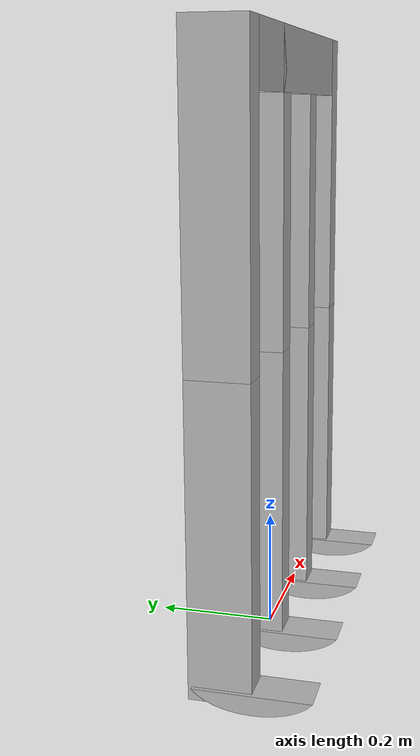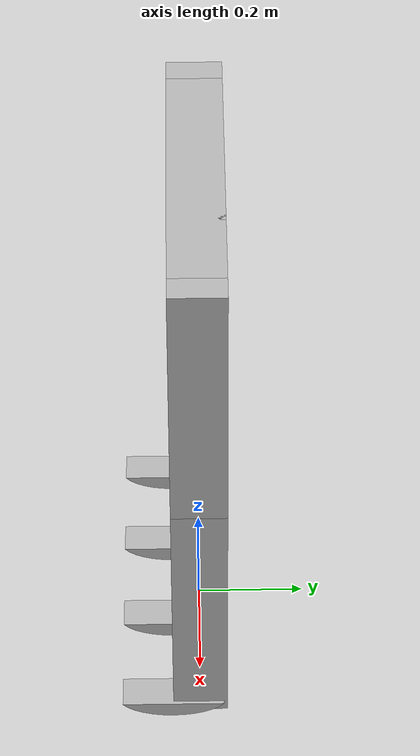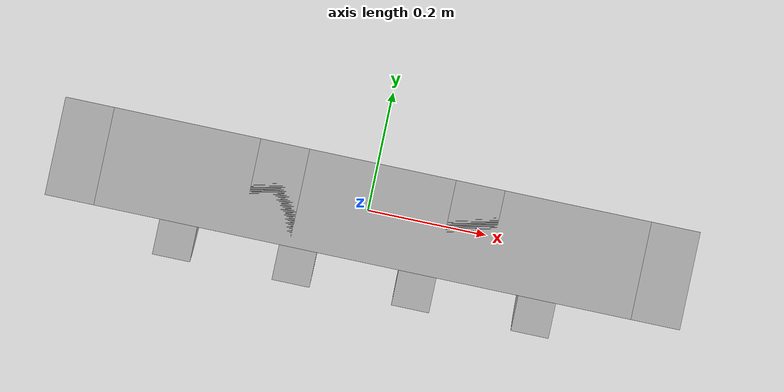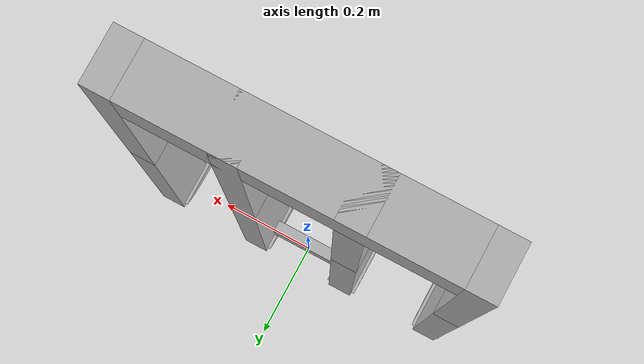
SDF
<?xml version="1.0" ?>
<sdf version="1.5">

  <model name="passive_dynamic_walker">
    <pose>0 0 0.025 0 0 0</pose>

    <link name="codpiece">
      <self_collide>0</self_collide>
      <pose>-0.0 0.0 .9  -0.000000 0.000000 0</pose>
      <inertial>
        <pose>0 0 0.0 0.000000 -0.000000 0.000000</pose>
        <inertia>
          <ixx>.00007333</ixx>
          <ixy>0</ixy>
          <ixz>0</ixz>
          <iyy>0.00089848</iyy>
          <iyz>0</iyz>
          <izz>0.00089848</izz>
        </inertia>
        <mass>.044</mass>
      </inertial>
      <collision name="codpiece-geom">
        <pose>0 -0.00000 0.0500000 0.000000 0 -0.000000</pose>
        <geometry>
          <box>
            <size>.55 .1 .1</size>
          </box>
        </geometry>
        <surface>
          <friction>
            <ode>
              <mu>10.00000</mu>
              <mu2>10.0000</mu2>
              <fdir1>0.000000 0.000000 0.000000</fdir1>
              <slip1>0.000000</slip1>
              <slip2>0.000000</slip2>
            </ode>
          </friction>
          <bounce>
            <restitution_coefficient>0.7000000</restitution_coefficient>
            <threshold>100000.000000</threshold>
          </bounce>
          <contact>
            <ode>
              <soft_cfm>0.000000</soft_cfm>
              <soft_erp>0.000000</soft_erp>
              <kp>1000000000000.000000</kp>
              <kd>1.000000</kd>
              <max_vel>0.000000</max_vel>
              <min_depth>0.001000</min_depth>
            </ode>
          </contact>
        </surface>
        <laser_retro>0.000000</laser_retro>
      </collision>
      <visual name="codpiece-viz">
        <pose>0 -0.00000 0.0500000 0.000000 0 -0.000000</pose>
        <geometry>
          <box>
            <size>.55 .1 .1</size>
          </box>
        </geometry>
        <cast_shadows>1</cast_shadows>
        <laser_retro>0.000000</laser_retro>
        <transparency>0.000000</transparency>
      </visual>
    </link>

    <link name="back-upper-legs">
      <self_collide>0</self_collide>
      <pose>-0.0 0.0 .75 -0.000000 0.000000 0</pose>
      <inertial> <!-- box dim: w=1, h=.025, d=1 -->
        <pose>0 0 0.125 0.000000 -0.000000 0.000000</pose>
        <inertia>
          <ixx>.0008666</ixx>
          <ixy>0</ixy>
          <ixz>0</ixz>
          <iyy>0.00124166</iyy>
          <iyz>0</iyz>
          <izz>0.000221666</izz>
        </inertia>
        <mass>0.04</mass>
      </inertial>
      <collision name="back-left-upper-leg-geom">
        <pose>-.3 -0.00000 0.000 0.000000 0 -0.000000</pose>
        <geometry>
          <box>
            <size>.05 .1 .5</size>
          </box>
        </geometry>
        <surface>
          <friction>
            <ode>
              <mu>10.00000</mu>
              <mu2>10.0000</mu2>
              <fdir1>0.000000 0.000000 0.000000</fdir1>
              <slip1>0.000000</slip1>
              <slip2>0.000000</slip2>
            </ode>
          </friction>
          <bounce>
            <restitution_coefficient>0.7000000</restitution_coefficient>
            <threshold>100000.000000</threshold>
          </bounce>
          <contact>
            <ode>
              <soft_cfm>0.000000</soft_cfm>
              <soft_erp>0.000000</soft_erp>
              <kp>1000000000000.000000</kp>
              <kd>1.000000</kd>
              <max_vel>0.000000</max_vel>
              <min_depth>0.001000</min_depth>
            </ode>
          </contact>
        </surface>
        <laser_retro>0.000000</laser_retro>
      </collision>
      <collision name="back-right-upper-leg-geom">
        <pose>.3 -0.00000 0.0000 0.000000 0 -0.000000</pose>
        <geometry>
          <box>
            <size>.05 .1 .5</size>
          </box>
        </geometry>
        <surface>
          <friction>
            <ode>
              <mu>10.00000</mu>
              <mu2>10.0000</mu2>
              <fdir1>0.000000 0.000000 0.000000</fdir1>
              <slip1>0.000000</slip1>
              <slip2>0.000000</slip2>
            </ode>
          </friction>
          <bounce>
            <restitution_coefficient>0.7000000</restitution_coefficient>
            <threshold>100000.000000</threshold>
          </bounce>
          <contact>
            <ode>
              <soft_cfm>0.000000</soft_cfm>
              <soft_erp>0.000000</soft_erp>
              <kp>1000000000000.000000</kp>
              <kd>1.000000</kd>
              <max_vel>0.000000</max_vel>
              <min_depth>0.001000</min_depth>
            </ode>
          </contact>
        </surface>
        <laser_retro>0.000000</laser_retro>
      </collision>
      <visual name="back-left-upper-leg-viz">
        <pose>-.3 -0.00000 0.000000 0.000000 0 -0.000000</pose>
        <geometry>
          <box>
            <size>.05 .1 .5</size>
          </box>
        </geometry>
        <cast_shadows>1</cast_shadows>
        <laser_retro>0.000000</laser_retro>
        <transparency>0.000000</transparency>
      </visual>
      <visual name="back-right-upper-leg-viz">
        <pose>.3 -0.00000 0.000000 0.000000 0 -0.000000</pose>
        <geometry>
          <box>
            <size>.05 .1 .5</size>
          </box>
        </geometry>
        <cast_shadows>1</cast_shadows>
        <laser_retro>0.000000</laser_retro>
        <transparency>0.000000</transparency>
      </visual>
    </link>

    <link name="back-left-lower-leg">
      <self_collide>0</self_collide>
      <pose>-0.3 0.0 .25 -0.000000 0.000000 0</pose>
      <inertial> <!-- box dim: w=1, h=.025, d=1 -->
        <pose>0 0 -0.0625 0.000000 -0.000000 0.000000</pose>
        <inertia>
          <ixx>.00004333</ixx>
          <ixy>0</ixy>
          <ixz>0</ixz>
          <iyy>0.000042083</iyy>
          <iyz>0</iyz>
          <izz>0.00020833</izz>
        </inertia>
        <mass>0.02</mass>
      </inertial>
      <collision name="back-left-lower-leg-geom">
        <pose>0 -0.00000 0.000000 0.000000 0 -0.000000</pose>
        <geometry>
          <box>
            <size>.05 .1 .5</size>
          </box>
        </geometry>
        <surface>
          <friction>
            <ode>
              <mu>10.00000</mu>
              <mu2>10.0000</mu2>
              <fdir1>0.000000 0.000000 0.000000</fdir1>
              <slip1>0.000000</slip1>
              <slip2>0.000000</slip2>
            </ode>
          </friction>
          <bounce>
            <restitution_coefficient>0.7000000</restitution_coefficient>
            <threshold>100000.000000</threshold>
          </bounce>
          <contact>
            <ode>
              <soft_cfm>0.000000</soft_cfm>
              <soft_erp>0.000000</soft_erp>
              <kp>1000000000000.000000</kp>
              <kd>1.000000</kd>
              <max_vel>0.000000</max_vel>
              <min_depth>0.001000</min_depth>
            </ode>
          </contact>
        </surface>
        <laser_retro>0.000000</laser_retro>
      </collision>
      <collision name="back-left-foot-geom">
        <pose>0 -0.0500000 -0.2400000 0.000000 0 -0.000000</pose>
        <geometry>
          <mesh>
            <uri>model://passive_dynamic_walker/foot.stl</uri>
            <scale>.5 .2 .1</scale>
          </mesh>
        </geometry>
        <surface>
          <friction>
            <ode>
              <mu>10.00000</mu>
              <mu2>10.0000</mu2>
              <fdir1>0.000000 0.000000 0.000000</fdir1>
              <slip1>0.000000</slip1>
              <slip2>0.000000</slip2>
            </ode>
          </friction>
          <bounce>
            <restitution_coefficient>0.7000000</restitution_coefficient>
            <threshold>100000.000000</threshold>
          </bounce>
          <contact>
            <ode>
              <soft_cfm>0.000000</soft_cfm>
              <soft_erp>0.000000</soft_erp>
              <kp>1000000000000.000000</kp>
              <kd>1.000000</kd>
              <max_vel>0.000000</max_vel>
              <min_depth>0.001000</min_depth>
            </ode>
          </contact>
        </surface>
        <laser_retro>0.000000</laser_retro>
      </collision>
      <visual name="back-left-lower-leg-viz">
        <pose>0 -0.00000 0.000000 0.000000 0 -0.000000</pose>
        <geometry>
          <box>
            <size>.05 .1 .5</size>
          </box>
        </geometry>
        <cast_shadows>1</cast_shadows>
        <laser_retro>0.000000</laser_retro>
        <transparency>0.000000</transparency>
      </visual>
      <visual name="back-left-foot-viz">
        <pose>0 -0.0500000 -0.2400000 0.000000 0 -0.000000</pose>
        <geometry>
          <mesh>
            <uri>model://passive_dynamic_walker/foot.stl</uri>
            <scale>.5 .2 .1</scale>
          </mesh>
        </geometry>
        <cast_shadows>1</cast_shadows>
        <laser_retro>0.000000</laser_retro>
        <transparency>0.000000</transparency>
      </visual>
    </link>

    <link name="back-right-lower-leg">
      <self_collide>0</self_collide>
      <pose>0.3 0.0 .25 -0.000000 0.000000 0</pose>
      <inertial> <!-- box dim: w=1, h=.025, d=1 -->
        <pose>0 0 -0.0625 0.000000 -0.000000 0.000000</pose>
        <inertia>
          <ixx>.00004333</ixx>
          <ixy>0</ixy>
          <ixz>0</ixz>
          <iyy>0.000042083</iyy>
          <iyz>0</iyz>
          <izz>0.00020833</izz>
        </inertia>
        <mass>0.02</mass>
      </inertial>
      <collision name="back-right-lower-leg-geom">
        <pose>0 -0.00000 0.000000 0.000000 0 -0.000000</pose>
        <geometry>
          <box>
            <size>.05 .1 .5</size>
          </box>
        </geometry>
        <surface>
          <friction>
            <ode>
              <mu>10.00000</mu>
              <mu2>10.0000</mu2>
              <fdir1>0.000000 0.000000 0.000000</fdir1>
              <slip1>0.000000</slip1>
              <slip2>0.000000</slip2>
            </ode>
          </friction>
          <bounce>
            <restitution_coefficient>0.7000000</restitution_coefficient>
            <threshold>100000.000000</threshold>
          </bounce>
          <contact>
            <ode>
              <soft_cfm>0.000000</soft_cfm>
              <soft_erp>0.000000</soft_erp>
              <kp>1000000000000.000000</kp>
              <kd>1.000000</kd>
              <max_vel>0.000000</max_vel>
              <min_depth>0.001000</min_depth>
            </ode>
          </contact>
        </surface>
        <laser_retro>0.000000</laser_retro>
      </collision>
      <collision name="back-right-foot-geom">
        <pose>0 -0.050000 -0.2400000 0.000000 0 -0.000000</pose>
        <geometry>
          <mesh>
            <uri>model://passive_dynamic_walker/foot.stl</uri>
            <scale>.5 .2 .1</scale>
          </mesh>
        </geometry>
        <surface>
          <friction>
            <ode>
              <mu>10.00000</mu>
              <mu2>10.0000</mu2>
              <fdir1>0.000000 0.000000 0.000000</fdir1>
              <slip1>0.000000</slip1>
              <slip2>0.000000</slip2>
            </ode>
          </friction>
          <bounce>
            <restitution_coefficient>0.7000000</restitution_coefficient>
            <threshold>100000.000000</threshold>
          </bounce>
          <contact>
            <ode>
              <soft_cfm>0.000000</soft_cfm>
              <soft_erp>0.000000</soft_erp>
              <kp>1000000000000.000000</kp>
              <kd>1.000000</kd>
              <max_vel>0.000000</max_vel>
              <min_depth>0.001000</min_depth>
            </ode>
          </contact>
        </surface>
        <laser_retro>0.000000</laser_retro>
      </collision>
      <visual name="back-right-lower-leg-viz">
        <pose>0 -0.00000 0.000000 0.000000 0 -0.000000</pose>
        <geometry>
          <box>
            <size>.05 .1 .5</size>
          </box>
        </geometry>
        <cast_shadows>1</cast_shadows>
        <laser_retro>0.000000</laser_retro>
        <transparency>0.000000</transparency>
      </visual>
      <visual name="back-right-foot-viz">
        <pose>0 -0.050000 -0.2400000 0.000000 0 -0.000000</pose>
        <geometry>
          <mesh>
            <uri>model://passive_dynamic_walker/foot.stl</uri>
            <scale>.5 .2 .1</scale>
          </mesh>
        </geometry>
        <cast_shadows>1</cast_shadows>
        <laser_retro>0.000000</laser_retro>
        <transparency>0.000000</transparency>
      </visual>
    </link>

    <link name="front-upper-legs">
      <self_collide>0</self_collide>
      <pose>0 0 .75000000 -0.000000 0.000000 0</pose>
      <inertial>
        <pose>0 0 0 0.000000 -0.000000 0.000000</pose>
        <inertia>
          <ixx>.0008666</ixx>
          <ixy>0</ixy>
          <ixz>0</ixz>
          <iyy>0.00124166</iyy>
          <iyz>0</iyz>
          <izz>0.000441666</izz>
        </inertia>
        <mass>0.04</mass>
      </inertial>
      <collision name="front-upper-legs-left-geom">
        <pose>-.1 -0.00000 0.000000 0.000000 0 -0.000000</pose>
        <geometry>
          <box>
            <size>.05 .1 .5</size>
          </box>
        </geometry>
       <surface>
          <friction>
            <ode>
              <mu>10.00000</mu>
              <mu2>10.0000</mu2>
              <fdir1>0.000000 0.000000 0.000000</fdir1>
              <slip1>0.000000</slip1>
              <slip2>0.000000</slip2>
            </ode>
          </friction>
          <bounce>
            <restitution_coefficient>0.7000000</restitution_coefficient>
            <threshold>100000.000000</threshold>
          </bounce>
          <contact>
            <ode>
              <soft_cfm>0.000000</soft_cfm>
              <soft_erp>0.000000</soft_erp>
              <kp>1000000000000.000000</kp>
              <kd>1.000000</kd>
              <max_vel>0.000000</max_vel>
              <min_depth>0.001000</min_depth>
            </ode>
          </contact>
        </surface>
        <laser_retro>0.000000</laser_retro>
      </collision>
      <collision name="front-upper-legs-right-geom">
        <pose>.1 -0.00000 0.000000 0.000000 0 -0.000000</pose>
        <geometry>
          <box>
            <size>.05 .1 .5</size>
          </box>
        </geometry>
        <surface>
          <friction>
            <ode>
              <mu>10.00000</mu>
              <mu2>10.0000</mu2>
              <fdir1>0.000000 0.000000 0.000000</fdir1>
              <slip1>0.000000</slip1>
              <slip2>0.000000</slip2>
            </ode>
          </friction>
          <bounce>
            <restitution_coefficient>0.7000000</restitution_coefficient>
            <threshold>100000.000000</threshold>
          </bounce>
          <contact>
            <ode>
              <soft_cfm>0.000000</soft_cfm>
              <soft_erp>0.000000</soft_erp>
              <kp>1000000000000.000000</kp>
              <kd>1.000000</kd>
              <max_vel>0.000000</max_vel>
              <min_depth>0.001000</min_depth>
            </ode>
          </contact>
        </surface>
        <laser_retro>0.000000</laser_retro>
      </collision>
      <visual name="front-upper-legs-left-viz">
        <pose>-.1 -0.00000 0.000000 0.000000 0 -0.000000</pose>
        <geometry>
          <box>
            <size>.05 .1 .5</size>
          </box>
        </geometry>
        <cast_shadows>1</cast_shadows>
        <laser_retro>0.000000</laser_retro>
        <transparency>0.000000</transparency>
      </visual>
      <visual name="front-upper-legs-right-viz">
        <pose>.1 -0.00000 0.000000 0.000000 0 -0.000000</pose>
        <geometry>
          <box>
            <size>.05 .1 .5</size>
          </box>
        </geometry>
        <cast_shadows>1</cast_shadows>
        <laser_retro>0.000000</laser_retro>
        <transparency>0.000000</transparency>
      </visual>
      <gravity>1</gravity>
      <self_collide>0</self_collide>
      <kinematic>0</kinematic>
    </link>

    <link name="front-lower-legs">
      <self_collide>0</self_collide>
      <pose>0 0 .25000000 -0.000000 0.000000 0</pose>
      <inertial>
        <pose>0 0 0 0.000000 -0.000000 0.000000</pose>
        <inertia>
          <ixx>.0008666</ixx>
          <ixy>0</ixy>
          <ixz>0</ixz>
          <iyy>0.00124166</iyy>
          <iyz>0</iyz>
          <izz>0.00044166</izz>
        </inertia>
        <mass>0.04</mass>
      </inertial>
      <collision name="front-lower-legs-left-geom">
        <pose>-.1 -0.00000 0.000000 0.000000 0 -0.000000</pose>
        <geometry>
          <box>
            <size>.05 .1 .5</size>
          </box>
        </geometry>
       <surface>
          <friction>
            <ode>
              <mu>10.00000</mu>
              <mu2>10.0000</mu2>
              <fdir1>0.000000 0.000000 0.000000</fdir1>
              <slip1>0.000000</slip1>
              <slip2>0.000000</slip2>
            </ode>
          </friction>
          <bounce>
            <restitution_coefficient>0.7000000</restitution_coefficient>
            <threshold>100000.000000</threshold>
          </bounce>
          <contact>
            <ode>
              <soft_cfm>0.000000</soft_cfm>
              <soft_erp>0.000000</soft_erp>
              <kp>1000000000000.000000</kp>
              <kd>1.000000</kd>
              <max_vel>0.000000</max_vel>
              <min_depth>0.001000</min_depth>
            </ode>
          </contact>
        </surface>
        <laser_retro>0.000000</laser_retro>
      </collision>
      <collision name="front-lower-legs-right-geom">
        <pose>.1 -0.00000 0.000000 0.000000 0 -0.000000</pose>
        <geometry>
          <box>
            <size>.05 .1 .5</size>
          </box>
        </geometry>
        <surface>
          <friction>
            <ode>
              <mu>10.00000</mu>
              <mu2>10.0000</mu2>
              <fdir1>0.000000 0.000000 0.000000</fdir1>
              <slip1>0.000000</slip1>
              <slip2>0.000000</slip2>
            </ode>
          </friction>
          <bounce>
            <restitution_coefficient>0.7000000</restitution_coefficient>
            <threshold>100000.000000</threshold>
          </bounce>
          <contact>
            <ode>
              <soft_cfm>0.000000</soft_cfm>
              <soft_erp>0.000000</soft_erp>
              <kp>1000000000000.000000</kp>
              <kd>1.000000</kd>
              <max_vel>0.000000</max_vel>
              <min_depth>0.001000</min_depth>
            </ode>
          </contact>
        </surface>
        <laser_retro>0.000000</laser_retro>
      </collision>
      <collision name="front-legs-left-foot-geom">
        <pose>-0.1 -0.050000 -0.2400000 0.000000 0 -0.000000</pose>
        <geometry>
          <mesh>
            <uri>model://passive_dynamic_walker/foot.stl</uri>
            <scale>.5 .2 .1</scale>
          </mesh>
        </geometry>
        <surface>
          <friction>
            <ode>
              <mu>10.00000</mu>
              <mu2>10.0000</mu2>
              <fdir1>0.000000 0.000000 0.000000</fdir1>
              <slip1>0.000000</slip1>
              <slip2>0.000000</slip2>
            </ode>
          </friction>
          <bounce>
            <restitution_coefficient>0.7000000</restitution_coefficient>
            <threshold>100000.000000</threshold>
          </bounce>
          <contact>
            <ode>
              <soft_cfm>0.000000</soft_cfm>
              <soft_erp>0.000000</soft_erp>
              <kp>1000000000000.000000</kp>
              <kd>1.000000</kd>
              <max_vel>0.000000</max_vel>
              <min_depth>0.001000</min_depth>
            </ode>
          </contact>
        </surface>
        <laser_retro>0.000000</laser_retro>
      </collision>
      <collision name="front-legs-right-foot-geom">
        <pose>0.1 -0.050000 -0.2400000 0.000000 0 -0.000000</pose>
        <geometry>
          <mesh>
            <uri>model://passive_dynamic_walker/foot.stl</uri>
            <scale>.5 .2 .1</scale>
          </mesh>
        </geometry>
        <surface>
          <friction>
            <ode>
              <mu>10.00000</mu>
              <mu2>10.0000</mu2>
              <fdir1>0.000000 0.000000 0.000000</fdir1>
              <slip1>0.000000</slip1>
              <slip2>0.000000</slip2>
            </ode>
          </friction>
          <bounce>
            <restitution_coefficient>0.7000000</restitution_coefficient>
            <threshold>100000.000000</threshold>
          </bounce>
          <contact>
            <ode>
              <soft_cfm>0.000000</soft_cfm>
              <soft_erp>0.000000</soft_erp>
              <kp>1000000000000.000000</kp>
              <kd>1.000000</kd>
              <max_vel>0.000000</max_vel>
              <min_depth>0.001000</min_depth>
            </ode>
          </contact>
        </surface>
        <laser_retro>0.000000</laser_retro>
      </collision>
      <visual name="front-lower-leg-left-viz">
        <pose>-.1 -0.00000 0.000000 0.000000 0 -0.000000</pose>
        <geometry>
          <box>
            <size>.05 .1 .5</size>
          </box>
        </geometry>
        <cast_shadows>1</cast_shadows>
        <laser_retro>0.000000</laser_retro>
        <transparency>0.000000</transparency>
      </visual>
      <visual name="front-lower-leg-right-viz">
        <pose>.1 -0.00000 0.000000 0.000000 0 -0.000000</pose>
        <geometry>
          <box>
            <size>.05 .1 .5</size>
          </box>
        </geometry>
        <cast_shadows>1</cast_shadows>
        <laser_retro>0.000000</laser_retro>
        <transparency>0.000000</transparency>
      </visual>
      <visual name="front-connector-viz3">
        <pose>0 -0.00000 -0.200000 0.000000 0 -0.000000</pose>
        <geometry>
          <box>
            <size>.2 .025 .05</size>
          </box>
        </geometry>
        <cast_shadows>1</cast_shadows>
        <laser_retro>0.000000</laser_retro>
        <transparency>0.000000</transparency>
      </visual>
      <visual name="front-left-foot-viz">
        <pose>-0.1 -0.050000 -0.2400000 0.000000 0 -0.000000</pose>
        <geometry>
          <mesh>
            <uri>model://passive_dynamic_walker/foot.stl</uri>
            <scale>.5 .2 .1</scale>
          </mesh>
        </geometry>
        <cast_shadows>1</cast_shadows>
        <laser_retro>0.000000</laser_retro>
        <transparency>0.000000</transparency>
      </visual>
      <visual name="front-right-foot-viz">
        <pose>0.1 -0.050000 -0.2400000 0.000000 0 -0.000000</pose>
        <geometry>
          <mesh>
            <uri>model://passive_dynamic_walker/foot.stl</uri>
            <scale>.5 .2 .1</scale>
          </mesh>
        </geometry>
        <cast_shadows>1</cast_shadows>
        <laser_retro>0.000000</laser_retro>
        <transparency>0.000000</transparency>
      </visual>
      <gravity>1</gravity>
      <self_collide>0</self_collide>
      <kinematic>0</kinematic>
    </link>

    <joint name="back-left-knee-joint" type="revolute">
      <pose>0.000000 0.000000 0.25 0.000000 -0.000000 0.000000</pose>
      <parent>back-upper-legs</parent>
      <child>back-left-lower-leg</child>
      <axis>
        <dynamics>
          <damping>0.000000</damping>
          <friction>0.000000</friction>
        </dynamics>
        <limit>
          <effort>10000.000000</effort>
          <velocity>1000.000000</velocity>
          <lower>0</lower>
          <upper>0.17453</upper>
        </limit>
        <xyz>1.000000 0.000000 0.000000</xyz>
        <use_parent_model_frame>true</use_parent_model_frame>
      </axis>
    </joint>

    <joint name="back-right-knee-joint" type="revolute">
      <pose>0.000000 0.000000 0.25 0.000000 -0.000000 0.000000</pose>
      <parent>back-upper-legs</parent>
      <child>back-right-lower-leg</child>
      <axis>
        <dynamics>
          <damping>0.000000</damping>
          <friction>0.000000</friction>
        </dynamics>
        <limit>
          <effort>10000.000000</effort>
          <velocity>1000.000000</velocity>
          <lower>0</lower>
          <upper>0.17453</upper>
        </limit>
        <xyz>1.000000 0.000000 0.000000</xyz>
        <use_parent_model_frame>true</use_parent_model_frame>
      </axis>
    </joint>

    <joint name="back-hip-joint" type="revolute">
      <pose>0.000000 0.000000 0.25 0.000000 -0.000000 0.000000</pose>
      <parent>codpiece</parent>
      <child>back-upper-legs</child>
      <axis>
        <dynamics>
          <damping>0.000000</damping>
          <friction>0.000000</friction>
        </dynamics>
        <limit>
          <effort>10000.000000</effort>
          <velocity>1000.000000</velocity>
          <upper>0</upper>
        </limit>
        <xyz>1.000000 0.000000 0.000000</xyz>
        <use_parent_model_frame>true</use_parent_model_frame>
      </axis>
    </joint>

    <joint name="front-hip-joint" type="revolute">
      <pose>0.000000 0.000000 0.25 0.000000 -0.000000 0.000000</pose>
      <parent>codpiece</parent>
      <child>front-upper-legs</child>
      <axis>
        <dynamics>
          <damping>0.000000</damping>
          <friction>0.000000</friction>
        </dynamics>
        <limit>
          <effort>10000.000000</effort>
          <velocity>1000.000000</velocity>
          <upper>0</upper>
        </limit>
        <xyz>1.000000 0.000000 0.000000</xyz>
        <use_parent_model_frame>true</use_parent_model_frame>
      </axis>
    </joint>

    <joint name="front-knees-joint" type="revolute">
      <pose>0.000000 0.000000 0.25 0.000000 -0.000000 0.000000</pose>
      <parent>front-upper-legs</parent>
      <child>front-lower-legs</child>
      <axis>
        <dynamics>
          <damping>0.000000</damping>
          <friction>0.000000</friction>
        </dynamics>
        <limit>
          <effort>10000.000000</effort>
          <velocity>1000.000000</velocity>
          <lower>0</lower>
          <upper>0.17453</upper>
        </limit>
        <xyz>1.000000 0.000000 0.000000</xyz>
        <use_parent_model_frame>true</use_parent_model_frame>
      </axis>
    </joint>

    <plugin name="walker-plugin" filename="libwalker.so" />
  </model>
</sdf>
